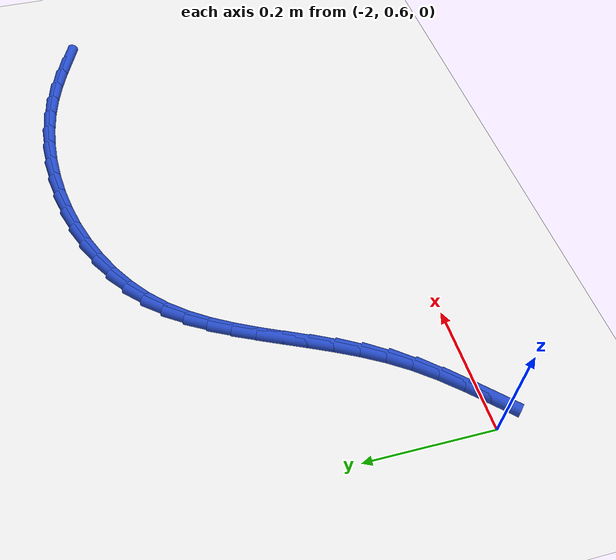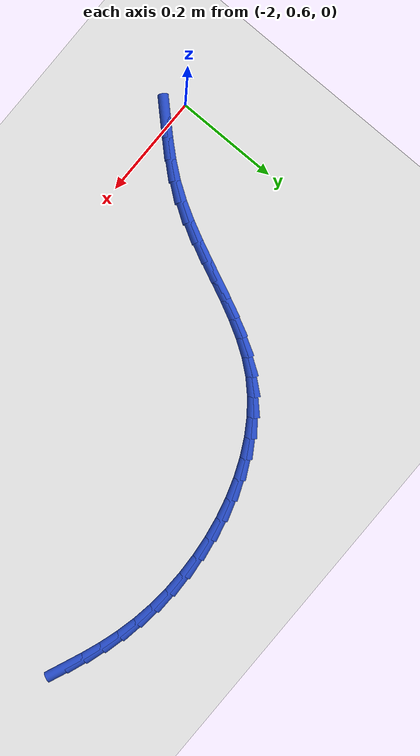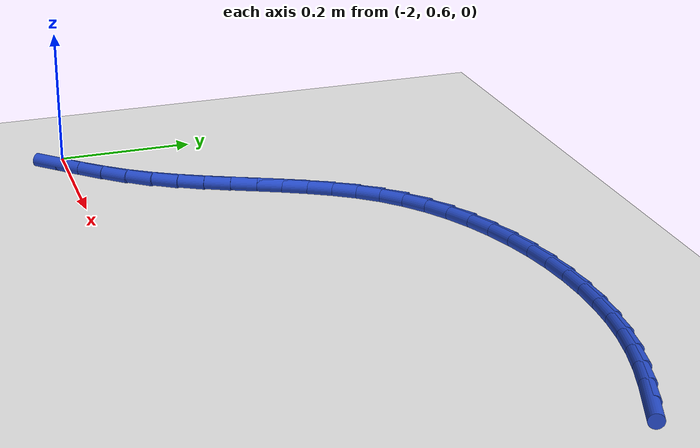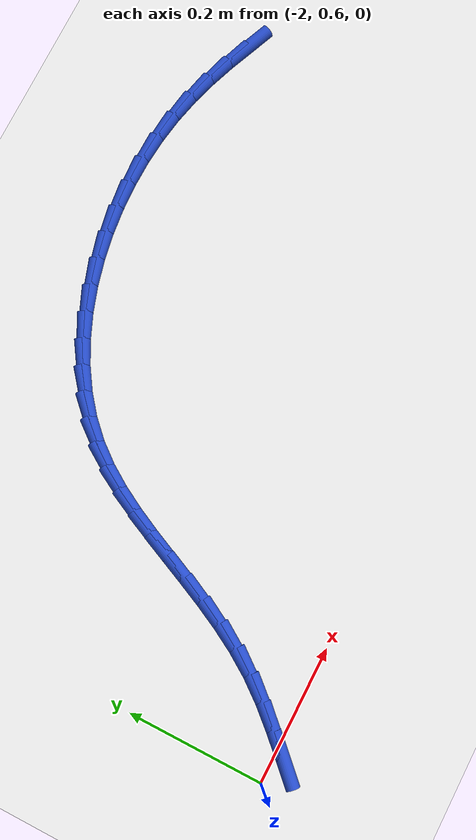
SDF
<sdf version="1.6">
 <world name="default">
  <model name="ground_plane">
   <static>1</static>
   <link name="link">
    <collision name="collision">
     <geometry><plane><normal>0 0 1</normal><size>100 100</size></plane></geometry>
     <surface><friction><ode><mu>100</mu><mu2>50</mu2></ode></friction></surface>
    </collision>
    <visual name="visual">
     <cast_shadows>0</cast_shadows>
     <geometry><plane><normal>0 0 1</normal><size>100 100</size></plane></geometry>
     <material>
      <script><uri>file://media/materials/scripts/gazebo.material</uri><name>Gazebo/WhiteGlow</name></script>
     </material>
    </visual>
   </link>
  </model>
  <model name="line">
   <link name="link_44">
    <pose>-1.0721051038953961 1.0920977119522464 0.01 0 1.57 -0.3897059963018488</pose>
    <collision name="collision">
     <geometry><cylinder><radius>0.01</radius><length>0.08</length></cylinder></geometry>
    </collision>
    <visual name="visual">
     <material>
      <script><name>Gazebo/Blue</name><uri>file://media/materials/scripts/gazebo.material</uri></script>
     </material>
     <geometry><cylinder><radius>0.01</radius><length>0.08</length></cylinder></geometry>
    </visual>
   </link>
   <link name="link_45">
    <pose>-1.107211387516195 1.1065162585043824 0.01 0 1.57 -0.34813743807292336</pose>
    <collision name="collision">
     <geometry><cylinder><radius>0.01</radius><length>0.08</length></cylinder></geometry>
    </collision>
    <visual name="visual">
     <material>
      <script><name>Gazebo/Blue</name><uri>file://media/materials/scripts/gazebo.material</uri></script>
     </material>
     <geometry><cylinder><radius>0.01</radius><length>0.08</length></cylinder></geometry>
    </visual>
   </link>
   <link name="link_46">
    <pose>-1.1430420602929325 1.1195198971023663 0.01 0 1.57 -0.2941474006051731</pose>
    <collision name="collision">
     <geometry><cylinder><radius>0.01</radius><length>0.08</length></cylinder></geometry>
    </collision>
    <visual name="visual">
     <material>
      <script><name>Gazebo/Blue</name><uri>file://media/materials/scripts/gazebo.material</uri></script>
     </material>
     <geometry><cylinder><radius>0.01</radius><length>0.08</length></cylinder></geometry>
    </visual>
   </link>
   <link name="link_47">
    <pose>-1.1798167985274925 1.1306602574657842 0.01 0 1.57 -0.2286504502082588</pose>
    <collision name="collision">
     <geometry><cylinder><radius>0.01</radius><length>0.08</length></cylinder></geometry>
    </collision>
    <visual name="visual">
     <material>
      <script><name>Gazebo/Blue</name><uri>file://media/materials/scripts/gazebo.material</uri></script>
     </material>
     <geometry><cylinder><radius>0.01</radius><length>0.08</length></cylinder></geometry>
    </visual>
   </link>
   <link name="link_48">
    <pose>-1.2177549380891592 1.139489231731959 0.01 0 1.57 -0.15655266634701503</pose>
    <collision name="collision">
     <geometry><cylinder><radius>0.01</radius><length>0.08</length></cylinder></geometry>
    </collision>
    <visual name="visual">
     <material>
      <script><name>Gazebo/Blue</name><uri>file://media/materials/scripts/gazebo.material</uri></script>
     </material>
     <geometry><cylinder><radius>0.01</radius><length>0.08</length></cylinder></geometry>
    </visual>
   </link>
   <link name="link_49">
    <pose>-1.2569281903784912 1.1456725063081472 0.01 0 1.57 -0.08691703948825712</pose>
    <collision name="collision">
     <geometry><cylinder><radius>0.01</radius><length>0.08</length></cylinder></geometry>
    </collision>
    <visual name="visual">
     <material>
      <script><name>Gazebo/Blue</name><uri>file://media/materials/scripts/gazebo.material</uri></script>
     </material>
     <geometry><cylinder><radius>0.01</radius><length>0.08</length></cylinder></geometry>
    </visual>
   </link>
   <link name="link_50">
    <pose>-1.297030592781641 1.149166892366436 0.01 0 1.57 -0.019871525918372043</pose>
    <collision name="collision">
     <geometry><cylinder><radius>0.01</radius><length>0.08</length></cylinder></geometry>
    </collision>
    <visual name="visual">
     <material>
      <script><name>Gazebo/Blue</name><uri>file://media/materials/scripts/gazebo.material</uri></script>
     </material>
     <geometry><cylinder><radius>0.01</radius><length>0.08</length></cylinder></geometry>
    </visual>
   </link>
   <link name="link_51">
    <pose>-1.3376966445136445 1.1499750952506165 0.01 0 1.57 0.04585823765514985</pose>
    <collision name="collision">
     <geometry><cylinder><radius>0.01</radius><length>0.08</length></cylinder></geometry>
    </collision>
    <visual name="visual">
     <material>
      <script><name>Gazebo/Blue</name><uri>file://media/materials/scripts/gazebo.material</uri></script>
     </material>
     <geometry><cylinder><radius>0.01</radius><length>0.08</length></cylinder></geometry>
    </visual>
   </link>
   <link name="link_52">
    <pose>-1.3785608447895368 1.1480998203044808 0.01 0 1.57 0.11148665976598979</pose>
    <collision name="collision">
     <geometry><cylinder><radius>0.01</radius><length>0.08</length></cylinder></geometry>
    </collision>
    <visual name="visual">
     <material>
      <script><name>Gazebo/Blue</name><uri>file://media/materials/scripts/gazebo.material</uri></script>
     </material>
     <geometry><cylinder><radius>0.01</radius><length>0.08</length></cylinder></geometry>
    </visual>
   </link>
   <link name="link_53">
    <pose>-1.419257692824352 1.1435437728718199 0.01 0 1.57 0.17820376297349944</pose>
    <collision name="collision">
     <geometry><cylinder><radius>0.01</radius><length>0.08</length></cylinder></geometry>
    </collision>
    <visual name="visual">
     <material>
      <script><name>Gazebo/Blue</name><uri>file://media/materials/scripts/gazebo.material</uri></script>
     </material>
     <geometry><cylinder><radius>0.01</radius><length>0.08</length></cylinder></geometry>
    </visual>
   </link>
   <link name="link_54">
    <pose>-1.4594216878331259 1.136309658296426 0.01 0 1.57 0.2472081602341265</pose>
    <collision name="collision">
     <geometry><cylinder><radius>0.01</radius><length>0.08</length></cylinder></geometry>
    </collision>
    <visual name="visual">
     <material>
      <script><name>Gazebo/Blue</name><uri>file://media/materials/scripts/gazebo.material</uri></script>
     </material>
     <geometry><cylinder><radius>0.01</radius><length>0.08</length></cylinder></geometry>
    </visual>
   </link>
   <link name="link_55">
    <pose>-1.4986873290308944 1.126400181922091 0.01 0 1.57 0.31973307414224117</pose>
    <collision name="collision">
     <geometry><cylinder><radius>0.01</radius><length>0.08</length></cylinder></geometry>
    </collision>
    <visual name="visual">
     <material>
      <script><name>Gazebo/Blue</name><uri>file://media/materials/scripts/gazebo.material</uri></script>
     </material>
     <geometry><cylinder><radius>0.01</radius><length>0.08</length></cylinder></geometry>
    </visual>
   </link>
   <link name="link_56">
    <pose>-1.5366891156326905 1.113818049092606 0.01 0 1.57 0.3970590777128254</pose>
    <collision name="collision">
     <geometry><cylinder><radius>0.01</radius><length>0.08</length></cylinder></geometry>
    </collision>
    <visual name="visual">
     <material>
      <script><name>Gazebo/Blue</name><uri>file://media/materials/scripts/gazebo.material</uri></script>
     </material>
     <geometry><cylinder><radius>0.01</radius><length>0.08</length></cylinder></geometry>
    </visual>
   </link>
   <link name="link_57">
    <pose>-1.5730615468535507 1.0985659651517632 0.01 0 1.57 0.4805031585577321</pose>
    <collision name="collision">
     <geometry><cylinder><radius>0.01</radius><length>0.08</length></cylinder></geometry>
    </collision>
    <visual name="visual">
     <material>
      <script><name>Gazebo/Blue</name><uri>file://media/materials/scripts/gazebo.material</uri></script>
     </material>
     <geometry><cylinder><radius>0.01</radius><length>0.08</length></cylinder></geometry>
    </visual>
   </link>
   <link name="link_58">
    <pose>-1.60743912190851 1.0806466354433535 0.01 0 1.57 0.5713678177003826</pose>
    <collision name="collision">
     <geometry><cylinder><radius>0.01</radius><length>0.08</length></cylinder></geometry>
    </collision>
    <visual name="visual">
     <material>
      <script><name>Gazebo/Blue</name><uri>file://media/materials/scripts/gazebo.material</uri></script>
     </material>
     <geometry><cylinder><radius>0.01</radius><length>0.08</length></cylinder></geometry>
    </visual>
   </link>
   <link name="link_59">
    <pose>-1.6394563400126025 1.0600627653111694 0.01 0 1.57 0.6708280116067767</pose>
    <collision name="collision">
     <geometry><cylinder><radius>0.01</radius><length>0.08</length></cylinder></geometry>
    </collision>
    <visual name="visual">
     <material>
      <script><name>Gazebo/Blue</name><uri>file://media/materials/scripts/gazebo.material</uri></script>
     </material>
     <geometry><cylinder><radius>0.01</radius><length>0.08</length></cylinder></geometry>
    </visual>
   </link>
   <link name="link_60">
    <pose>-1.6687477003808644 1.0368170600990019 0.01 0 1.57 0.7797327660083936</pose>
    <collision name="collision">
     <geometry><cylinder><radius>0.01</radius><length>0.08</length></cylinder></geometry>
    </collision>
    <visual name="visual">
     <material>
      <script><name>Gazebo/Blue</name><uri>file://media/materials/scripts/gazebo.material</uri></script>
     </material>
     <geometry><cylinder><radius>0.01</radius><length>0.08</length></cylinder></geometry>
    </visual>
   </link>
   <link name="link_61">
    <pose>-1.694947724044376 1.0109122342720522 0.01 0 1.57 0.8927158887377593</pose>
    <collision name="collision">
     <geometry><cylinder><radius>0.01</radius><length>0.08</length></cylinder></geometry>
    </collision>
    <visual name="visual">
     <material>
      <script><name>Gazebo/Blue</name><uri>file://media/materials/scripts/gazebo.material</uri></script>
     </material>
     <geometry><cylinder><radius>0.01</radius><length>0.08</length></cylinder></geometry>
    </visual>
   </link>
   <link name="link_62">
    <pose>-1.717887389570348 0.9824331422701079 0.01 0 1.57 0.9889415055753171</pose>
    <collision name="collision">
     <geometry><cylinder><radius>0.01</radius><length>0.08</length></cylinder></geometry>
    </collision>
    <visual name="visual">
     <material>
      <script><name>Gazebo/Blue</name><uri>file://media/materials/scripts/gazebo.material</uri></script>
     </material>
     <geometry><cylinder><radius>0.01</radius><length>0.08</length></cylinder></geometry>
    </visual>
   </link>
   <link name="link_63">
    <pose>-1.7380733393709384 0.9517471372965481 0.01 0 1.57 1.0625692841840495</pose>
    <collision name="collision">
     <geometry><cylinder><radius>0.01</radius><length>0.08</length></cylinder></geometry>
    </collision>
    <visual name="visual">
     <material>
      <script><name>Gazebo/Blue</name><uri>file://media/materials/scripts/gazebo.material</uri></script>
     </material>
     <geometry><cylinder><radius>0.01</radius><length>0.08</length></cylinder></geometry>
    </visual>
   </link>
   <link name="link_64">
    <pose>-1.7561573594293498 0.9192822578787773 0.01 0 1.57 1.1136514534009831</pose>
    <collision name="collision">
     <geometry><cylinder><radius>0.01</radius><length>0.08</length></cylinder></geometry>
    </collision>
    <visual name="visual">
     <material>
      <script><name>Gazebo/Blue</name><uri>file://media/materials/scripts/gazebo.material</uri></script>
     </material>
     <geometry><cylinder><radius>0.01</radius><length>0.08</length></cylinder></geometry>
    </visual>
   </link>
   <link name="link_65">
    <pose>-1.7727912357287838 0.8854665425441981 0.01 0 1.57 1.1430889754072613</pose>
    <collision name="collision">
     <geometry><cylinder><radius>0.01</radius><length>0.08</length></cylinder></geometry>
    </collision>
    <visual name="visual">
     <material>
      <script><name>Gazebo/Blue</name><uri>file://media/materials/scripts/gazebo.material</uri></script>
     </material>
     <geometry><cylinder><radius>0.01</radius><length>0.08</length></cylinder></geometry>
    </visual>
   </link>
   <link name="link_66">
    <pose>-1.7886267542524426 0.8507280298202146 0.01 0 1.57 1.1518679548077155</pose>
    <collision name="collision">
     <geometry><cylinder><radius>0.01</radius><length>0.08</length></cylinder></geometry>
    </collision>
    <visual name="visual">
     <material>
      <script><name>Gazebo/Blue</name><uri>file://media/materials/scripts/gazebo.material</uri></script>
     </material>
     <geometry><cylinder><radius>0.01</radius><length>0.08</length></cylinder></geometry>
    </visual>
   </link>
   <link name="link_67">
    <pose>-1.8043157009835278 0.815494758234231 0.01 0 1.57 1.1406829909434208</pose>
    <collision name="collision">
     <geometry><cylinder><radius>0.01</radius><length>0.08</length></cylinder></geometry>
    </collision>
    <visual name="visual">
     <material>
      <script><name>Gazebo/Blue</name><uri>file://media/materials/scripts/gazebo.material</uri></script>
     </material>
     <geometry><cylinder><radius>0.01</radius><length>0.08</length></cylinder></geometry>
    </visual>
   </link>
   <link name="link_68">
    <pose>-1.8205098619052416 0.7801947663136507 0.01 0 1.57 1.1098582787186067</pose>
    <collision name="collision">
     <geometry><cylinder><radius>0.01</radius><length>0.08</length></cylinder></geometry>
    </collision>
    <visual name="visual">
     <material>
      <script><name>Gazebo/Blue</name><uri>file://media/materials/scripts/gazebo.material</uri></script>
     </material>
     <geometry><cylinder><radius>0.01</radius><length>0.08</length></cylinder></geometry>
    </visual>
   </link>
   <link name="link_69">
    <pose>-1.8378610230007868 0.7452560925858771 0.01 0 1.57 1.0594984990624667</pose>
    <collision name="collision">
     <geometry><cylinder><radius>0.01</radius><length>0.08</length></cylinder></geometry>
    </collision>
    <visual name="visual">
     <material>
      <script><name>Gazebo/Blue</name><uri>file://media/materials/scripts/gazebo.material</uri></script>
     </material>
     <geometry><cylinder><radius>0.01</radius><length>0.08</length></cylinder></geometry>
    </visual>
   </link>
   <link name="link_70">
    <pose>-1.8570209702533635 0.7111067755783148 0.01 0 1.57 0.9898501246671527</pose>
    <collision name="collision">
     <geometry><cylinder><radius>0.01</radius><length>0.08</length></cylinder></geometry>
    </collision>
    <visual name="visual">
     <material>
      <script><name>Gazebo/Blue</name><uri>file://media/materials/scripts/gazebo.material</uri></script>
     </material>
     <geometry><cylinder><radius>0.01</radius><length>0.08</length></cylinder></geometry>
    </visual>
   </link>
   <link name="link_71">
    <pose>-1.8786414896461752 0.6781748538183666 0.01 0 1.57 0.9072563515920239</pose>
    <collision name="collision">
     <geometry><cylinder><radius>0.01</radius><length>0.08</length></cylinder></geometry>
    </collision>
    <visual name="visual">
     <material>
      <script><name>Gazebo/Blue</name><uri>file://media/materials/scripts/gazebo.material</uri></script>
     </material>
     <geometry><cylinder><radius>0.01</radius><length>0.08</length></cylinder></geometry>
    </visual>
   </link>
   <link name="link_72">
    <pose>-1.9031762773637642 0.6467921298833953 0.01 0 1.57 0.8433022599514356</pose>
    <collision name="collision">
     <geometry><cylinder><radius>0.01</radius><length>0.08</length></cylinder></geometry>
    </collision>
    <visual name="visual">
     <material>
      <script><name>Gazebo/Blue</name><uri>file://media/materials/scripts/gazebo.material</uri></script>
     </material>
     <geometry><cylinder><radius>0.01</radius><length>0.08</length></cylinder></geometry>
    </visual>
   </link>
   <link name="link_73">
    <pose>-1.929938443048343 0.6167362868037252 0.01 0 1.57 0.8073765648505122</pose>
    <collision name="collision">
     <geometry><cylinder><radius>0.01</radius><length>0.08</length></cylinder></geometry>
    </collision>
    <visual name="visual">
     <material>
      <script><name>Gazebo/Blue</name><uri>file://media/materials/scripts/gazebo.material</uri></script>
     </material>
     <geometry><cylinder><radius>0.01</radius><length>0.08</length></cylinder></geometry>
    </visual>
   </link>
   <link name="link_74">
    <pose>-1.957833697035474 0.5875870849524439 0.01 0 1.57 0.7982869700072771</pose>
    <collision name="collision">
     <geometry><cylinder><radius>0.01</radius><length>0.08</length></cylinder></geometry>
    </collision>
    <visual name="visual">
     <material>
      <script><name>Gazebo/Blue</name><uri>file://media/materials/scripts/gazebo.material</uri></script>
     </material>
     <geometry><cylinder><radius>0.01</radius><length>0.08</length></cylinder></geometry>
    </visual>
   </link>
  </model>
 </world>
</sdf>
